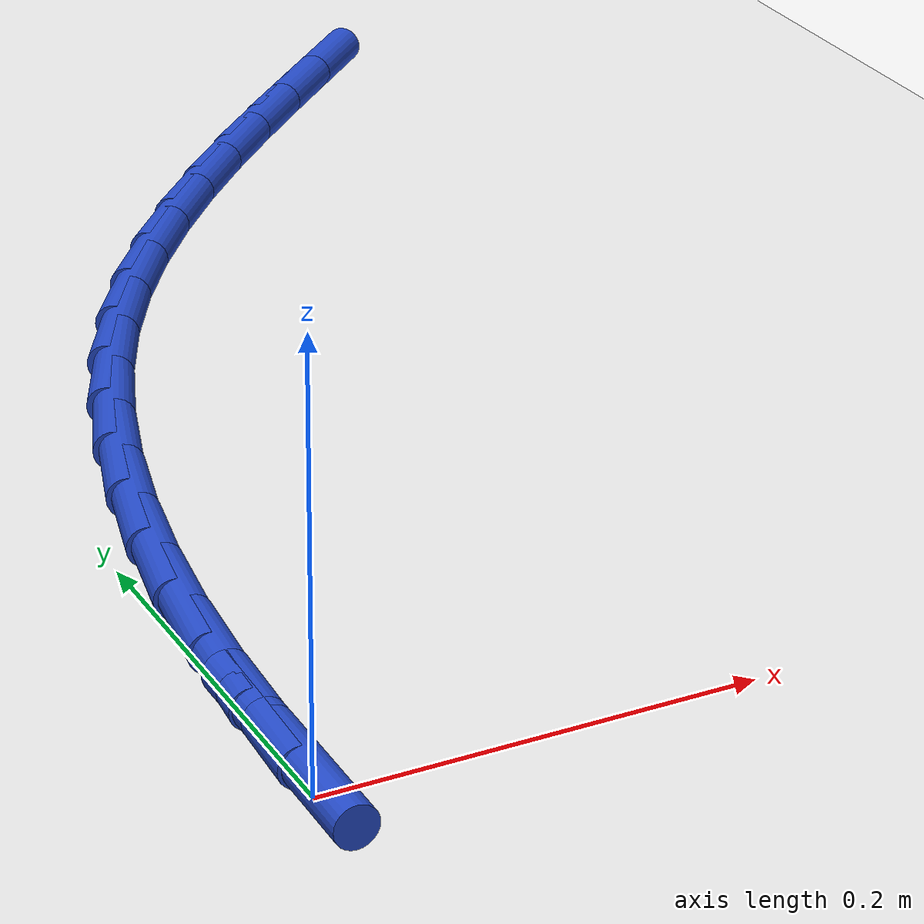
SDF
<sdf version="1.6">
 <world name="default">
  <model name="ground_plane">
   <static>1</static>
   <link name="link">
    <collision name="collision">
     <geometry><plane><normal>0 0 1</normal><size>100 100</size></plane></geometry>
     <surface><friction><ode><mu>100</mu><mu2>50</mu2></ode></friction></surface>
    </collision>
    <visual name="visual">
     <cast_shadows>0</cast_shadows>
     <geometry><plane><normal>0 0 1</normal><size>100 100</size></plane></geometry>
     <material>
      <script><uri>file://media/materials/scripts/gazebo.material</uri><name>Gazebo/WhiteGlow</name></script>
     </material>
    </visual>
   </link>
  </model>
  <model name="line">
   <link name="link_1">
    <pose>0.0005506007339790293 0.0476490383056921 0.01 0 1.57 1.5168082034582062</pose>
    <collision name="collision">
     <geometry><cylinder><radius>0.01</radius><length>0.08</length></cylinder></geometry>
    </collision>
    <visual name="visual">
     <material>
      <script><name>Gazebo/Blue</name><uri>file://media/materials/scripts/gazebo.material</uri></script>
     </material>
     <geometry><cylinder><radius>0.01</radius><length>0.08</length></cylinder></geometry>
    </visual>
   </link>
   <link name="link_2">
    <pose>0.0031275486741620968 0.0953344106193341 0.01 0 1.57 1.4718414360372423</pose>
    <collision name="collision">
     <geometry><cylinder><radius>0.01</radius><length>0.08</length></cylinder></geometry>
    </collision>
    <visual name="visual">
     <material>
      <script><name>Gazebo/Blue</name><uri>file://media/materials/scripts/gazebo.material</uri></script>
     </material>
     <geometry><cylinder><radius>0.01</radius><length>0.08</length></cylinder></geometry>
    </visual>
   </link>
   <link name="link_3">
    <pose>0.007838785824267998 0.14278885655521736 0.01 0 1.57 1.4237807907978421</pose>
    <collision name="collision">
     <geometry><cylinder><radius>0.01</radius><length>0.08</length></cylinder></geometry>
    </collision>
    <visual name="visual">
     <material>
      <script><name>Gazebo/Blue</name><uri>file://media/materials/scripts/gazebo.material</uri></script>
     </material>
     <geometry><cylinder><radius>0.01</radius><length>0.08</length></cylinder></geometry>
    </visual>
   </link>
   <link name="link_4">
    <pose>0.01479225418801551 0.18974511572763328 0.01 0 1.57 1.3720380814729647</pose>
    <collision name="collision">
     <geometry><cylinder><radius>0.01</radius><length>0.08</length></cylinder></geometry>
    </collision>
    <visual name="visual">
     <material>
      <script><name>Gazebo/Blue</name><uri>file://media/materials/scripts/gazebo.material</uri></script>
     </material>
     <geometry><cylinder><radius>0.01</radius><length>0.08</length></cylinder></geometry>
    </visual>
   </link>
   <link name="link_5">
    <pose>0.024095895769123413 0.23593592775087305 0.01 0 1.57 1.3159999961972793</pose>
    <collision name="collision">
     <geometry><cylinder><radius>0.01</radius><length>0.08</length></cylinder></geometry>
    </collision>
    <visual name="visual">
     <material>
      <script><name>Gazebo/Blue</name><uri>file://media/materials/scripts/gazebo.material</uri></script>
     </material>
     <geometry><cylinder><radius>0.01</radius><length>0.08</length></cylinder></geometry>
    </visual>
   </link>
   <link name="link_6">
    <pose>0.03585765257131049 0.281094032239228 0.01 0 1.57 1.2550407736091131</pose>
    <collision name="collision">
     <geometry><cylinder><radius>0.01</radius><length>0.08</length></cylinder></geometry>
    </collision>
    <visual name="visual">
     <material>
      <script><name>Gazebo/Blue</name><uri>file://media/materials/scripts/gazebo.material</uri></script>
     </material>
     <geometry><cylinder><radius>0.01</radius><length>0.08</length></cylinder></geometry>
    </visual>
   </link>
   <link name="link_7">
    <pose>0.05018546659829553 0.3249521688069897 0.01 0 1.57 1.1885493299797951</pose>
    <collision name="collision">
     <geometry><cylinder><radius>0.01</radius><length>0.08</length></cylinder></geometry>
    </collision>
    <visual name="visual">
     <material>
      <script><name>Gazebo/Blue</name><uri>file://media/materials/scripts/gazebo.material</uri></script>
     </material>
     <geometry><cylinder><radius>0.01</radius><length>0.08</length></cylinder></geometry>
    </visual>
   </link>
   <link name="link_8">
    <pose>0.0671872798537973 0.36724307706844916 0.01 0 1.57 1.115976135121178</pose>
    <collision name="collision">
     <geometry><cylinder><radius>0.01</radius><length>0.08</length></cylinder></geometry>
    </collision>
    <visual name="visual">
     <material>
      <script><name>Gazebo/Blue</name><uri>file://media/materials/scripts/gazebo.material</uri></script>
     </material>
     <geometry><cylinder><radius>0.01</radius><length>0.08</length></cylinder></geometry>
    </visual>
   </link>
   <link name="link_9">
    <pose>0.08697103334464618 0.40769949801008654 0.01 0 1.57 1.0394892135325797</pose>
    <collision name="collision">
     <geometry><cylinder><radius>0.01</radius><length>0.08</length></cylinder></geometry>
    </collision>
    <visual name="visual">
     <material>
      <script><name>Gazebo/Blue</name><uri>file://media/materials/scripts/gazebo.material</uri></script>
     </material>
     <geometry><cylinder><radius>0.01</radius><length>0.08</length></cylinder></geometry>
    </visual>
   </link>
   <link name="link_10">
    <pose>0.10957082173328837 0.44615582002415427 0.01 0 1.57 0.9691435873972878</pose>
    <collision name="collision">
     <geometry><cylinder><radius>0.01</radius><length>0.08</length></cylinder></geometry>
    </collision>
    <visual name="visual">
     <material>
      <script><name>Gazebo/Blue</name><uri>file://media/materials/scripts/gazebo.material</uri></script>
     </material>
     <geometry><cylinder><radius>0.01</radius><length>0.08</length></cylinder></geometry>
    </visual>
   </link>
   <link name="link_11">
    <pose>0.1347461829364904 0.48282435110296645 0.01 0 1.57 0.9082709454076849</pose>
    <collision name="collision">
     <geometry><cylinder><radius>0.01</radius><length>0.08</length></cylinder></geometry>
    </collision>
    <visual name="visual">
     <material>
      <script><name>Gazebo/Blue</name><uri>file://media/materials/scripts/gazebo.material</uri></script>
     </material>
     <geometry><cylinder><radius>0.01</radius><length>0.08</length></cylinder></geometry>
    </visual>
   </link>
   <link name="link_12">
    <pose>0.16219286048577009 0.5180052104069789 0.01 0 1.57 0.8574978983794502</pose>
    <collision name="collision">
     <geometry><cylinder><radius>0.01</radius><length>0.08</length></cylinder></geometry>
    </collision>
    <visual name="visual">
     <material>
      <script><name>Gazebo/Blue</name><uri>file://media/materials/scripts/gazebo.material</uri></script>
     </material>
     <geometry><cylinder><radius>0.01</radius><length>0.08</length></cylinder></geometry>
    </visual>
   </link>
   <link name="link_13">
    <pose>0.19160659791264525 0.5519985170966474 0.01 0 1.57 0.8170058332884267</pose>
    <collision name="collision">
     <geometry><cylinder><radius>0.01</radius><length>0.08</length></cylinder></geometry>
    </collision>
    <visual name="visual">
     <material>
      <script><name>Gazebo/Blue</name><uri>file://media/materials/scripts/gazebo.material</uri></script>
     </material>
     <geometry><cylinder><radius>0.01</radius><length>0.08</length></cylinder></geometry>
    </visual>
   </link>
   <link name="link_14">
    <pose>0.22268313874863369 0.5851043903324279 0.01 0 1.57 0.786683250902086</pose>
    <collision name="collision">
     <geometry><cylinder><radius>0.01</radius><length>0.08</length></cylinder></geometry>
    </collision>
    <visual name="visual">
     <material>
      <script><name>Gazebo/Blue</name><uri>file://media/materials/scripts/gazebo.material</uri></script>
     </material>
     <geometry><cylinder><radius>0.01</radius><length>0.08</length></cylinder></geometry>
    </visual>
   </link>
   <link name="link_15">
    <pose>0.25511822652525323 0.6176229492747761 0.01 0 1.57 0.7662586834641331</pose>
    <collision name="collision">
     <geometry><cylinder><radius>0.01</radius><length>0.08</length></cylinder></geometry>
    </collision>
    <visual name="visual">
     <material>
      <script><name>Gazebo/Blue</name><uri>file://media/materials/scripts/gazebo.material</uri></script>
     </material>
     <geometry><cylinder><radius>0.01</radius><length>0.08</length></cylinder></geometry>
    </visual>
   </link>
   <link name="link_16">
    <pose>0.2886076047740218 0.6498543130841481 0.01 0 1.57 0.7553979403237775</pose>
    <collision name="collision">
     <geometry><cylinder><radius>0.01</radius><length>0.08</length></cylinder></geometry>
    </collision>
    <visual name="visual">
     <material>
      <script><name>Gazebo/Blue</name><uri>file://media/materials/scripts/gazebo.material</uri></script>
     </material>
     <geometry><cylinder><radius>0.01</radius><length>0.08</length></cylinder></geometry>
    </visual>
   </link>
   <link name="link_17">
    <pose>0.32284701702645713 0.6820986009209995 0.01 0 1.57 0.7537641779279588</pose>
    <collision name="collision">
     <geometry><cylinder><radius>0.01</radius><length>0.08</length></cylinder></geometry>
    </collision>
    <visual name="visual">
     <material>
      <script><name>Gazebo/Blue</name><uri>file://media/materials/scripts/gazebo.material</uri></script>
     </material>
     <geometry><cylinder><radius>0.01</radius><length>0.08</length></cylinder></geometry>
    </visual>
   </link>
   <link name="link_150">
    <pose>-6.938893903907228e-18 2.3592239273284576e-16 0.01 0 1.57 1.5597821119629736</pose>
    <collision name="collision">
     <geometry><cylinder><radius>0.01</radius><length>0.08</length></cylinder></geometry>
    </collision>
    <visual name="visual">
     <material>
      <script><name>Gazebo/Blue</name><uri>file://media/materials/scripts/gazebo.material</uri></script>
     </material>
     <geometry><cylinder><radius>0.01</radius><length>0.08</length></cylinder></geometry>
    </visual>
   </link>
   <link name="link_151">
    <pose>0.0005252105318514569 0.047682862684105765 0.01 0 1.57 1.5597821119629742</pose>
    <collision name="collision">
     <geometry><cylinder><radius>0.01</radius><length>0.08</length></cylinder></geometry>
    </collision>
    <visual name="visual">
     <material>
      <script><name>Gazebo/Blue</name><uri>file://media/materials/scripts/gazebo.material</uri></script>
     </material>
     <geometry><cylinder><radius>0.01</radius><length>0.08</length></cylinder></geometry>
    </visual>
   </link>
  </model>
 </world>
</sdf>
